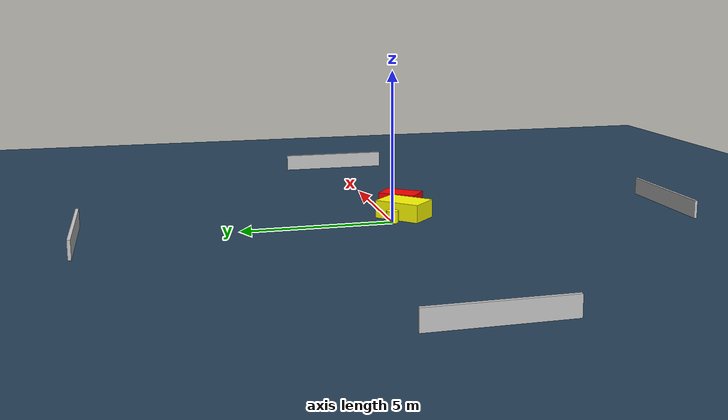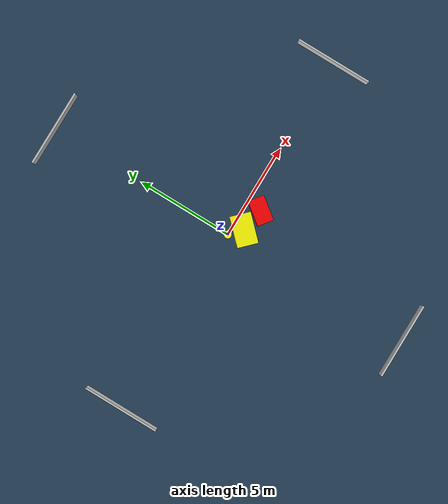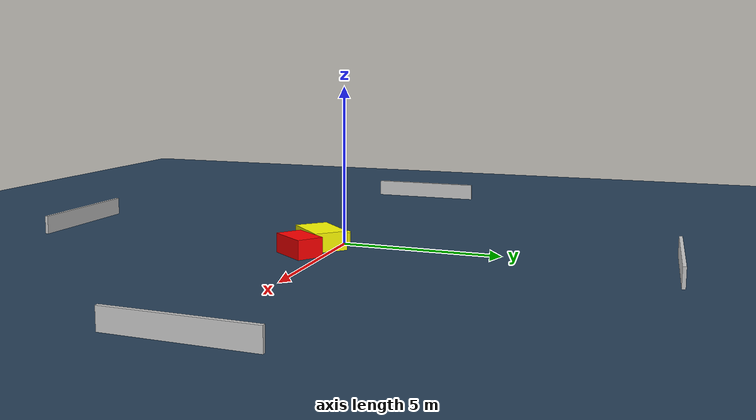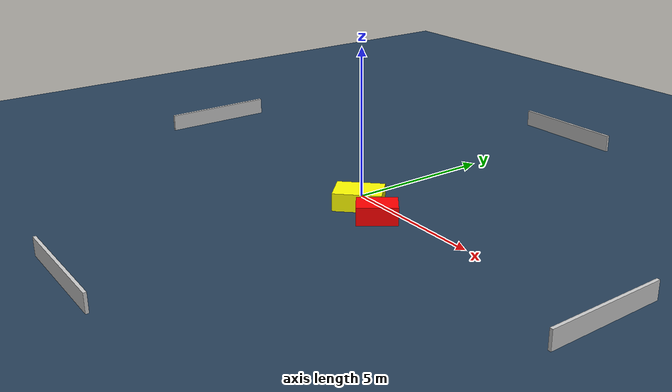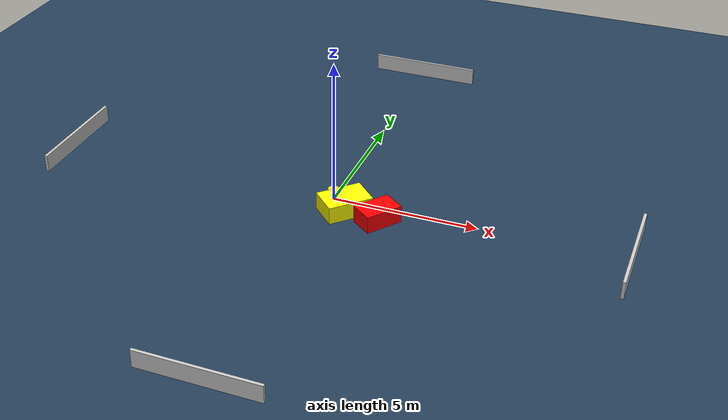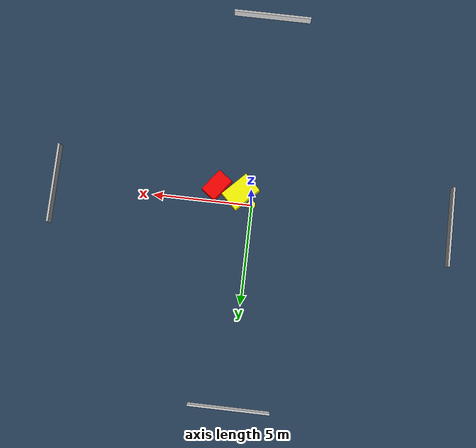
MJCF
<?xml version="1.0" ?>
<mujoco model="generated_environment">
  <option timestep="0.01" integrator="RK4" cone="elliptic"/>
  <default>
    <geom density="1"/>
  </default>
  <asset>
    <texture builtin="gradient" height="3072" name="skybox" rgb1="0.3 0.5 0.7" rgb2="0 0 0" type="skybox" width="512"/>
    <texture builtin="checker" height="300" name="groundplane" rgb1="0.2 0.3 0.4" rgb2="0.1 0.2 0.3" type="2d" width="300"/>
    <material name="groundplane" reflectance="0.2" texrepeat="5 5" texture="groundplane"/>
  </asset>
  <worldbody>
    <light dir="0 0 -1" directional="true" pos="0 0 1.5"/>
    <geom condim="3" friction="0.5 0.005 0.001" material="groundplane" name="floor" pos="0 0 0" size="0 0 0.05" type="plane"/>
    <body name="walls">
      <geom name="wall_1" condim="4" pos="-10.0 0.0 0.3" rgba="0.800000011920929 0.800000011920929 0.800000011920929 1.0" size="0.05 2.0 0.3" type="box"/>
      <geom name="wall_2" condim="4" pos="10.0 0.0 0.3" rgba="0.800000011920929 0.800000011920929 0.800000011920929 1.0" size="0.05 2.0 0.3" type="box"/>
      <geom name="wall_3" condim="4" pos="0.0 -10.0 0.3" rgba="0.800000011920929 0.800000011920929 0.800000011920929 1.0" size="2.0 0.05 0.3" type="box"/>
      <geom name="wall_4" condim="4" pos="0.0 10.0 0.3" rgba="0.800000011920929 0.800000011920929 0.800000011920929 1.0" size="2.0 0.05 0.3" type="box"/>
    </body>
    <body name="robot">
      <joint name="joint_x" type="slide" pos="0 0 0" axis="1 0 0"/>
      <joint name="joint_y" type="slide" pos="0 0 0" axis="0 1 0"/>
      <geom name="robot" type="cylinder" pos="0.0 0.0 0.2" size="0.2 0.2 0.0" mass="5.0" friction="1.0 0.005 0.0001" condim="4" rgba="1.0 1.0 0.0 1.0"/>
    </body>
    <body name="obstacle_1_movable">
      <geom name="obstacle_1_movable" condim="4" pos="0.6039416259437308 -0.5652591898928964 0.3" euler="0 0 135.5342920042695" friction="0.0 0.005 0.001" rgba="1.0 1.0 0.0 1.0" size="0.5359818899056836 0.7913450133814537 0.3" type="box" mass="0.1"/>
      <joint type="free"/>
    </body>
    <body name="obstacle_2_static">
      <geom name="obstacle_2_static" condim="4" pos="1.8337982168242328 -0.7738716833055893 0.3" euler="0 0 53.27803849350102" friction="0.0 0.005 0.001" rgba="1.0 0.0 0.0 1.0" size="0.6560767907526726 0.4228172848628437 0.3" type="box"/>
    </body>
  </worldbody>
  <actuator>
    <motor name="actuator_x" joint="joint_x" gear="1" ctrlrange="-1 1"/>
    <motor name="actuator_y" joint="joint_y" gear="1" ctrlrange="-1 1"/>
  </actuator>
</mujoco>
